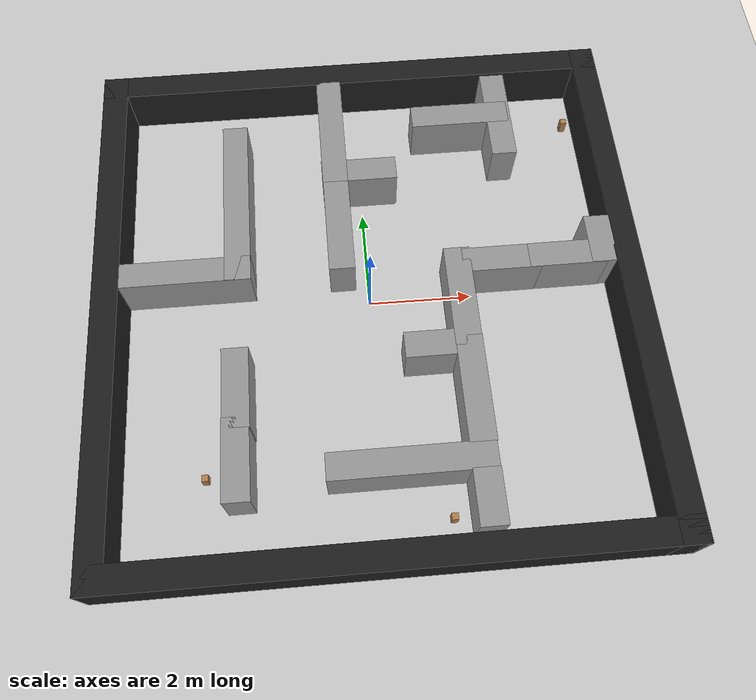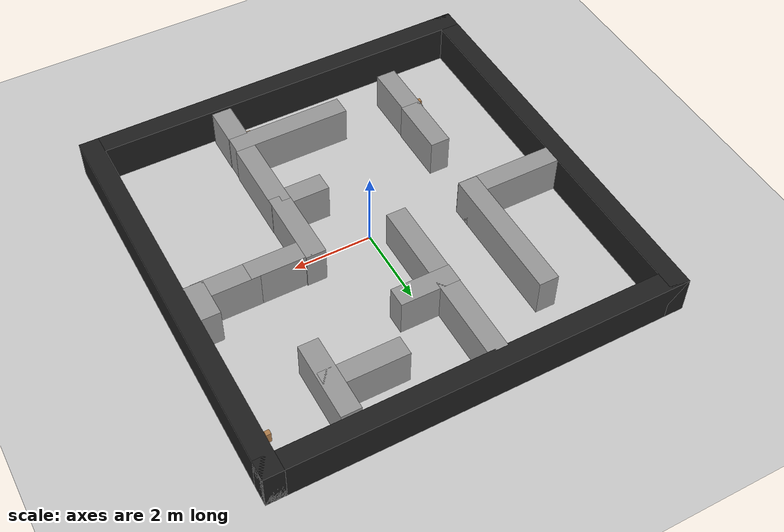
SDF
<sdf version="1.7">
 <world name="default">
  <light name="sun" type="directional">
   <pose>0 0 10 0 -0 0</pose>
   <diffuse>0.8 0.8 0.8 1</diffuse>
   <specular>0.2 0.2 0.2 1</specular>
   <attenuation>
    <range>1000</range>
    <constant>0.9</constant>
    <linear>0.01</linear>
    <quadratic>0.001</quadratic>
   </attenuation>
   <direction>-0.5 0.1 -0.9</direction>
   <spot><inner_angle>0</inner_angle><outer_angle>0</outer_angle><falloff>0</falloff></spot>
  </light>
  <model name="ground_plane">
   <static>1</static>
   <link name="link">
    <collision name="collision">
     <geometry><plane><normal>0 0 1</normal><size>100 100</size></plane></geometry>
     <surface><friction><ode><mu>100</mu><mu2>50</mu2></ode></friction></surface>
    </collision>
    <visual name="visual">
     <cast_shadows>0</cast_shadows>
     <geometry><plane><normal>0 0 1</normal><size>100 100</size></plane></geometry>
     <material>
      <script><uri>file://media/materials/scripts/gazebo.material</uri><name>Gazebo/Grey</name></script>
     </material>
    </visual>
   </link>
  </model>
  <gravity>0 0 -9.8</gravity>
  <magnetic_field>6e-06 2.3e-05 -4.2e-05</magnetic_field>
  <atmosphere type="adiabatic"/>
  <physics type="ode">
   <max_step_size>0.001</max_step_size>
   <real_time_factor>1</real_time_factor>
   <real_time_update_rate>1000</real_time_update_rate>
  </physics>
  <scene><ambient>0.4 0.4 0.4 1</ambient><background>0.7 0.7 0.7 1</background><shadows>1</shadows></scene>
  <audio><device>default</device></audio>
  <spherical_coordinates>
   <surface_model>EARTH_WGS84</surface_model>
   <latitude_deg>0</latitude_deg>
   <longitude_deg>0</longitude_deg>
   <elevation>0</elevation>
   <heading_deg>0</heading_deg>
  </spherical_coordinates>
  <model name="north_wall">
   <static>1</static>
   <pose>5 0 0.5 0 -0 0</pose>
   <link name="link">
    <inertial>
     <mass>1</mass>
     <inertia>
      <ixx>0.166667</ixx>
      <ixy>0</ixy>
      <ixz>0</ixz>
      <iyy>0.166667</iyy>
      <iyz>0</iyz>
      <izz>0.166667</izz>
     </inertia>
    </inertial>
    <collision name="collision"><geometry><box><size>0.5 10.5 1</size></box></geometry></collision>
    <visual name="visual">
     <geometry><box><size>0.5 10.5 1</size></box></geometry>
     <material>
      <script><name>Gazebo/Black</name><uri>file://media/materials/scripts/gazebo.material</uri></script>
     </material>
    </visual>
   </link>
  </model>
  <model name="south_wall">
   <static>1</static>
   <pose>-5 0 0.5 0 -0 0</pose>
   <link name="link">
    <inertial>
     <mass>1</mass>
     <inertia>
      <ixx>0.166667</ixx>
      <ixy>0</ixy>
      <ixz>0</ixz>
      <iyy>0.166667</iyy>
      <iyz>0</iyz>
      <izz>0.166667</izz>
     </inertia>
    </inertial>
    <collision name="collision"><geometry><box><size>0.5 10.5 1</size></box></geometry></collision>
    <visual name="visual">
     <geometry><box><size>0.5 10.5 1</size></box></geometry>
     <material>
      <script><name>Gazebo/Black</name><uri>file://media/materials/scripts/gazebo.material</uri></script>
     </material>
    </visual>
   </link>
  </model>
  <model name="east_wall">
   <static>1</static>
   <pose>0 -5 0.5 0 -0 0</pose>
   <link name="link">
    <inertial>
     <mass>1</mass>
     <inertia>
      <ixx>0.166667</ixx>
      <ixy>0</ixy>
      <ixz>0</ixz>
      <iyy>0.166667</iyy>
      <iyz>0</iyz>
      <izz>0.166667</izz>
     </inertia>
    </inertial>
    <collision name="collision"><geometry><box><size>10.5 0.5 1</size></box></geometry></collision>
    <visual name="visual">
     <geometry><box><size>10.5 0.5 1</size></box></geometry>
     <material>
      <script><name>Gazebo/Black</name><uri>file://media/materials/scripts/gazebo.material</uri></script>
     </material>
    </visual>
   </link>
  </model>
  <model name="west_wall">
   <static>1</static>
   <pose>0 5 0.5 0 -0 0</pose>
   <link name="link">
    <inertial>
     <mass>1</mass>
     <inertia>
      <ixx>0.166667</ixx>
      <ixy>0</ixy>
      <ixz>0</ixz>
      <iyy>0.166667</iyy>
      <iyz>0</iyz>
      <izz>0.166667</izz>
     </inertia>
    </inertial>
    <collision name="collision"><geometry><box><size>10.5 0.5 1</size></box></geometry></collision>
    <visual name="visual">
     <geometry><box><size>10.5 0.5 1</size></box></geometry>
     <material>
      <script><name>Gazebo/Black</name><uri>file://media/materials/scripts/gazebo.material</uri></script>
     </material>
    </visual>
   </link>
  </model>
  <model name="h1">
   <static>1</static>
   <pose>4.52784 0.58406 0.5 0 -0 0</pose>
   <link name="link">
    <inertial>
     <mass>1</mass>
     <inertia>
      <ixx>0.166667</ixx>
      <ixy>0</ixy>
      <ixz>0</ixz>
      <iyy>0.166667</iyy>
      <iyz>0</iyz>
      <izz>0.166667</izz>
     </inertia>
    </inertial>
    <collision name="collision"><geometry><box><size>0.5 1 1</size></box></geometry></collision>
    <visual name="visual">
     <geometry><box><size>0.5 1 1</size></box></geometry>
     <material>
      <script><name>Gazebo/Grey</name><uri>file://media/materials/scripts/gazebo.material</uri></script>
     </material>
    </visual>
   </link>
  </model>
  <model name="h2">
   <static>1</static>
   <pose>1.70441 -4.17674 0.5 0 -0 0</pose>
   <link name="link">
    <inertial>
     <mass>1</mass>
     <inertia>
      <ixx>0.166667</ixx>
      <ixy>0</ixy>
      <ixz>0</ixz>
      <iyy>0.166667</iyy>
      <iyz>0</iyz>
      <izz>0.166667</izz>
     </inertia>
    </inertial>
    <collision name="collision"><geometry><box><size>0.5 1 1</size></box></geometry></collision>
    <visual name="visual">
     <geometry><box><size>0.5 1 1</size></box></geometry>
     <material>
      <script><name>Gazebo/Grey</name><uri>file://media/materials/scripts/gazebo.material</uri></script>
     </material>
    </visual>
   </link>
  </model>
  <model name="h3">
   <static>1</static>
   <pose>-0.508476 1.32572 0.5 0 -0 0</pose>
   <link name="link">
    <inertial>
     <mass>1</mass>
     <inertia>
      <ixx>0.166667</ixx>
      <ixy>0</ixy>
      <ixz>0</ixz>
      <iyy>0.166667</iyy>
      <iyz>0</iyz>
      <izz>0.166667</izz>
     </inertia>
    </inertial>
    <collision name="collision"><geometry><box><size>0.5 2 1</size></box></geometry></collision>
    <visual name="visual">
     <geometry><box><size>0.5 2 1</size></box></geometry>
     <material>
      <script><name>Gazebo/Grey</name><uri>file://media/materials/scripts/gazebo.material</uri></script>
     </material>
    </visual>
   </link>
  </model>
  <model name="h5">
   <static>1</static>
   <pose>1.7077 -0.403069 0.5 0 -0 0</pose>
   <link name="link">
    <inertial>
     <mass>1</mass>
     <inertia>
      <ixx>0.166667</ixx>
      <ixy>0</ixy>
      <ixz>0</ixz>
      <iyy>0.166667</iyy>
      <iyz>0</iyz>
      <izz>0.166667</izz>
     </inertia>
    </inertial>
    <collision name="collision"><geometry><box><size>0.5 2 1</size></box></geometry></collision>
    <visual name="visual">
     <geometry><box><size>0.5 2 1</size></box></geometry>
     <material>
      <script><name>Gazebo/Grey</name><uri>file://media/materials/scripts/gazebo.material</uri></script>
     </material>
    </visual>
   </link>
  </model>
  <model name="h6">
   <static>1</static>
   <pose>-2.57589 -1.88629 0.5 0 -0 0</pose>
   <link name="link">
    <inertial>
     <mass>1</mass>
     <inertia>
      <ixx>0.166667</ixx>
      <ixy>0</ixy>
      <ixz>0</ixz>
      <iyy>0.166667</iyy>
      <iyz>0</iyz>
      <izz>0.166667</izz>
     </inertia>
    </inertial>
    <collision name="collision"><geometry><box><size>0.5 1.5 1</size></box></geometry></collision>
    <visual name="visual">
     <geometry><box><size>0.5 1.5 1</size></box></geometry>
     <material>
      <script><name>Gazebo/Grey</name><uri>file://media/materials/scripts/gazebo.material</uri></script>
     </material>
    </visual>
   </link>
  </model>
  <model name="h7">
   <static>1</static>
   <pose>-2.59092 -3.19048 0.5 0 -0 0</pose>
   <link name="link">
    <inertial>
     <mass>1</mass>
     <inertia>
      <ixx>0.166667</ixx>
      <ixy>0</ixy>
      <ixz>0</ixz>
      <iyy>0.166667</iyy>
      <iyz>0</iyz>
      <izz>0.166667</izz>
     </inertia>
    </inertial>
    <collision name="collision"><geometry><box><size>0.5 1.5 1</size></box></geometry></collision>
    <visual name="visual">
     <geometry><box><size>0.5 1.5 1</size></box></geometry>
     <material>
      <script><name>Gazebo/Grey</name><uri>file://media/materials/scripts/gazebo.material</uri></script>
     </material>
    </visual>
   </link>
  </model>
  <model name="h8">
   <static>1</static>
   <pose>1.71373 -2.22723 0.5 0 -0 0</pose>
   <link name="link">
    <inertial>
     <mass>1</mass>
     <inertia>
      <ixx>0.166667</ixx>
      <ixy>0</ixy>
      <ixz>0</ixz>
      <iyy>0.166667</iyy>
      <iyz>0</iyz>
      <izz>0.166667</izz>
     </inertia>
    </inertial>
    <collision name="collision"><geometry><box><size>0.5 2 1</size></box></geometry></collision>
    <visual name="visual">
     <geometry><box><size>0.5 2 1</size></box></geometry>
     <material>
      <script><name>Gazebo/Grey</name><uri>file://media/materials/scripts/gazebo.material</uri></script>
     </material>
    </visual>
   </link>
  </model>
  <model name="h9">
   <static>1</static>
   <pose>-0.51307 3.54164 0.5 0 -0 0</pose>
   <link name="link">
    <inertial>
     <mass>1</mass>
     <inertia>
      <ixx>0.166667</ixx>
      <ixy>0</ixy>
      <ixz>0</ixz>
      <iyy>0.166667</iyy>
      <iyz>0</iyz>
      <izz>0.166667</izz>
     </inertia>
    </inertial>
    <collision name="collision"><geometry><box><size>0.5 2.5 1</size></box></geometry></collision>
    <visual name="visual">
     <geometry><box><size>0.5 2.5 1</size></box></geometry>
     <material>
      <script><name>Gazebo/Grey</name><uri>file://media/materials/scripts/gazebo.material</uri></script>
     </material>
    </visual>
   </link>
  </model>
  <model name="h10">
   <static>1</static>
   <pose>-2.5 2.00746 0.5 0 -0 0</pose>
   <link name="link">
    <inertial>
     <mass>1</mass>
     <inertia>
      <ixx>0.166667</ixx>
      <ixy>0</ixy>
      <ixz>0</ixz>
      <iyy>0.166667</iyy>
      <iyz>0</iyz>
      <izz>0.166667</izz>
     </inertia>
    </inertial>
    <collision name="collision"><geometry><box><size>0.5 3.5 1</size></box></geometry></collision>
    <visual name="visual">
     <geometry><box><size>0.5 3.5 1</size></box></geometry>
     <material>
      <script><name>Gazebo/Grey</name><uri>file://media/materials/scripts/gazebo.material</uri></script>
     </material>
    </visual>
   </link>
  </model>
  <model name="h11">
   <static>1</static>
   <pose>2.97094 3.69572 0.5 0 -0 0</pose>
   <link name="link">
    <inertial>
     <mass>1</mass>
     <inertia>
      <ixx>0.166667</ixx>
      <ixy>0</ixy>
      <ixz>0</ixz>
      <iyy>0.166667</iyy>
      <iyz>0</iyz>
      <izz>0.166667</izz>
     </inertia>
    </inertial>
    <collision name="collision"><geometry><box><size>0.5 2 1</size></box></geometry></collision>
    <visual name="visual">
     <geometry><box><size>0.5 2 1</size></box></geometry>
     <material>
      <script><name>Gazebo/Grey</name><uri>file://media/materials/scripts/gazebo.material</uri></script>
     </material>
    </visual>
   </link>
  </model>
  <model name="v12">
   <static>1</static>
   <pose>2.55226 0.319037 0.5 0 -0 0</pose>
   <link name="link">
    <inertial>
     <mass>1</mass>
     <inertia>
      <ixx>0.166667</ixx>
      <ixy>0</ixy>
      <ixz>0</ixz>
      <iyy>0.166667</iyy>
      <iyz>0</iyz>
      <izz>0.166667</izz>
     </inertia>
    </inertial>
    <collision name="collision"><geometry><box><size>1.5 0.5 1</size></box></geometry></collision>
    <visual name="visual">
     <geometry><box><size>1.5 0.5 1</size></box></geometry>
     <material>
      <script><name>Gazebo/Grey</name><uri>file://media/materials/scripts/gazebo.material</uri></script>
     </material>
    </visual>
   </link>
  </model>
  <model name="v13">
   <static>1</static>
   <pose>-0.02241 2.5381 0.5 0 -0 0</pose>
   <link name="link">
    <inertial>
     <mass>1</mass>
     <inertia>
      <ixx>0.166667</ixx>
      <ixy>0</ixy>
      <ixz>0</ixz>
      <iyy>0.166667</iyy>
      <iyz>0</iyz>
      <izz>0.166667</izz>
     </inertia>
    </inertial>
    <collision name="collision"><geometry><box><size>1.5 0.5 1</size></box></geometry></collision>
    <visual name="visual">
     <geometry><box><size>1.5 0.5 1</size></box></geometry>
     <material>
      <script><name>Gazebo/Grey</name><uri>file://media/materials/scripts/gazebo.material</uri></script>
     </material>
    </visual>
   </link>
  </model>
  <model name="v15">
   <static>1</static>
   <pose>2.16856 3.74577 0.5 0 -0 0</pose>
   <link name="link">
    <inertial>
     <mass>1</mass>
     <inertia>
      <ixx>0.166667</ixx>
      <ixy>0</ixy>
      <ixz>0</ixz>
      <iyy>0.166667</iyy>
      <iyz>0</iyz>
      <izz>0.166667</izz>
     </inertia>
    </inertial>
    <collision name="collision"><geometry><box><size>2 0.5 1</size></box></geometry></collision>
    <visual name="visual">
     <geometry><box><size>2 0.5 1</size></box></geometry>
     <material>
      <script><name>Gazebo/Grey</name><uri>file://media/materials/scripts/gazebo.material</uri></script>
     </material>
    </visual>
   </link>
  </model>
  <model name="v16">
   <static>1</static>
   <pose>0.444503 -3.4583 0.5 0 -0 0</pose>
   <link name="link">
    <inertial>
     <mass>1</mass>
     <inertia>
      <ixx>0.166667</ixx>
      <ixy>0</ixy>
      <ixz>0</ixz>
      <iyy>0.166667</iyy>
      <iyz>0</iyz>
      <izz>0.166667</izz>
     </inertia>
    </inertial>
    <collision name="collision"><geometry><box><size>3 0.5 1</size></box></geometry></collision>
    <visual name="visual">
     <geometry><box><size>3 0.5 1</size></box></geometry>
     <material>
      <script><name>Gazebo/Grey</name><uri>file://media/materials/scripts/gazebo.material</uri></script>
     </material>
    </visual>
   </link>
  </model>
  <model name="v18">
   <static>1</static>
   <pose>-3.5 0.5 0.5 0 -0 0</pose>
   <link name="link">
    <inertial>
     <mass>1</mass>
     <inertia>
      <ixx>0.166667</ixx>
      <ixy>0</ixy>
      <ixz>0</ixz>
      <iyy>0.166667</iyy>
      <iyz>0</iyz>
      <izz>0.166667</izz>
     </inertia>
    </inertial>
    <collision name="collision"><geometry><box><size>2.5 0.5 1</size></box></geometry></collision>
    <visual name="visual">
     <geometry><box><size>2.5 0.5 1</size></box></geometry>
     <material>
      <script><name>Gazebo/Grey</name><uri>file://media/materials/scripts/gazebo.material</uri></script>
     </material>
    </visual>
   </link>
  </model>
  <model name="v19">
   <static>1</static>
   <pose>3.83336 0.322056 0.5 0 -0 0</pose>
   <link name="link">
    <inertial>
     <mass>1</mass>
     <inertia>
      <ixx>0.166667</ixx>
      <ixy>0</ixy>
      <ixz>0</ixz>
      <iyy>0.166667</iyy>
      <iyz>0</iyz>
      <izz>0.166667</izz>
     </inertia>
    </inertial>
    <collision name="collision"><geometry><box><size>1.5 0.5 1</size></box></geometry></collision>
    <visual name="visual">
     <geometry><box><size>1.5 0.5 1</size></box></geometry>
     <material>
      <script><name>Gazebo/Grey</name><uri>file://media/materials/scripts/gazebo.material</uri></script>
     </material>
    </visual>
   </link>
  </model>
  <model name="v20">
   <static>1</static>
   <pose>1.0212 -1.33132 0.5 0 -0 0</pose>
   <link name="link">
    <inertial>
     <mass>1</mass>
     <inertia>
      <ixx>0.166667</ixx>
      <ixy>0</ixy>
      <ixz>0</ixz>
      <iyy>0.166667</iyy>
      <iyz>0</iyz>
      <izz>0.166667</izz>
     </inertia>
    </inertial>
    <collision name="collision"><geometry><box><size>1 0.5 1</size></box></geometry></collision>
    <visual name="visual">
     <geometry><box><size>1 0.5 1</size></box></geometry>
     <material>
      <script><name>Gazebo/Grey</name><uri>file://media/materials/scripts/gazebo.material</uri></script>
     </material>
    </visual>
   </link>
  </model>
  <model name="aruco_column_6x6_100mm_42">
   <link name="link">
    <pose>0 0 0.15 0 -0 0</pose>
    <inertial>
     <mass>1</mass>
     <inertia><ixx>1</ixx><ixy>0</ixy><ixz>0</ixz><iyy>1</iyy><iyz>0</iyz><izz>1</izz></inertia>
    </inertial>
    <collision name="collision">
     <geometry><box><size>0.12 0.12 0.3</size></box></geometry>
     <surface>
      <contact>
       <poissons_ratio>0.347</poissons_ratio>
       <elastic_modulus>8.8e+09</elastic_modulus>
       <ode><kp>100000</kp><kd>1</kd><max_vel>1</max_vel><min_depth>0.001</min_depth></ode>
      </contact>
      <friction>
       <torsional>
        <coefficient>1</coefficient>
        <use_patch_radius>0</use_patch_radius>
        <surface_radius>0.05</surface_radius>
       </torsional>
      </friction>
     </surface>
    </collision>
    <visual name="visual">
     <geometry><box><size>0.12 0.12 0.3</size></box></geometry>
     <material>
      <script><uri>file://media/materials/scripts/gazebo.material</uri><name>Gazebo/Wood</name></script>
     </material>
    </visual>
   </link>
   <link name="aruco_6x6_100mm_42::main">
    <pose relative_to="aruco_6x6_100mm_42::__model__">0 0 0 0 -0 0</pose>
    <visual name="main_Visual">
     <geometry><box><size>0.1 0.1 0.001</size></box></geometry>
     <material>
      <script>
       <uri>file://media/materials/scripts</uri>
       <uri>file://media/materials/textures</uri>
       <name>aruco_6x6_100mm_42</name>
      </script>
     </material>
    </visual>
    <inertial>
     <inertia><ixx>1</ixx><ixy>0</ixy><ixz>0</ixz><iyy>1</iyy><iyz>0</iyz><izz>1</izz></inertia>
     <mass>1</mass>
    </inertial>
   </link>
   <frame name="aruco_6x6_100mm_42::__model__" attached_to="aruco_6x6_100mm_42::main">
    <pose relative_to="__model__">-0.06 0 0.24 3.14159 1.57079 3.14159</pose>
   </frame>
   <joint name="aruco_6x6_100mm_42_joint" type="fixed">
    <child>aruco_6x6_100mm_42::main</child>
    <parent>link</parent>
   </joint>
   <pose>-3.23191 -3.30652 -0.001049 0 -0.000405 0</pose>
  </model>
  <model name="aruco_column_6x6_100mm_2">
   <link name="link">
    <pose>0 0 0.15 0 -0 0</pose>
    <inertial>
     <mass>1</mass>
     <inertia><ixx>1</ixx><ixy>0</ixy><ixz>0</ixz><iyy>1</iyy><iyz>0</iyz><izz>1</izz></inertia>
    </inertial>
    <collision name="collision">
     <geometry><box><size>0.12 0.12 0.3</size></box></geometry>
     <surface>
      <contact>
       <poissons_ratio>0.347</poissons_ratio>
       <elastic_modulus>8.8e+09</elastic_modulus>
       <ode><kp>100000</kp><kd>1</kd><max_vel>1</max_vel><min_depth>0.001</min_depth></ode>
      </contact>
      <friction>
       <torsional>
        <coefficient>1</coefficient>
        <use_patch_radius>0</use_patch_radius>
        <surface_radius>0.05</surface_radius>
       </torsional>
      </friction>
     </surface>
    </collision>
    <visual name="visual">
     <geometry><box><size>0.12 0.12 0.3</size></box></geometry>
     <material>
      <script><uri>file://media/materials/scripts/gazebo.material</uri><name>Gazebo/Wood</name></script>
     </material>
    </visual>
   </link>
   <link name="aruco_6x6_100mm_2::main">
    <pose relative_to="aruco_6x6_100mm_2::__model__">0 0 0 0 -0 0</pose>
    <visual name="main_Visual">
     <geometry><box><size>0.1 0.1 0.001</size></box></geometry>
     <material>
      <script>
       <uri>file://media/materials/scripts</uri>
       <uri>file://media/materials/textures</uri>
       <name>aruco_6x6_100mm_2</name>
      </script>
     </material>
    </visual>
    <inertial>
     <inertia><ixx>1</ixx><ixy>0</ixy><ixz>0</ixz><iyy>1</iyy><iyz>0</iyz><izz>1</izz></inertia>
     <mass>1</mass>
    </inertial>
   </link>
   <frame name="aruco_6x6_100mm_2::__model__" attached_to="aruco_6x6_100mm_2::main">
    <pose relative_to="__model__">-0.06 0 0.14 3.14159 1.57079 3.14159</pose>
   </frame>
   <joint name="aruco_6x6_100mm_2_joint" type="fixed">
    <child>aruco_6x6_100mm_2::main</child>
    <parent>link</parent>
   </joint>
   <pose>4.53848 3.8944 -0.001049 0 -0.000405 0</pose>
  </model>
  <model name="aruco_column_6x6_100mm_0">
   <link name="link">
    <pose>0 0 0.15 0 -0 0</pose>
    <inertial>
     <mass>1</mass>
     <inertia><ixx>1</ixx><ixy>0</ixy><ixz>0</ixz><iyy>1</iyy><iyz>0</iyz><izz>1</izz></inertia>
    </inertial>
    <collision name="collision">
     <geometry><box><size>0.12 0.12 0.3</size></box></geometry>
     <surface>
      <contact>
       <poissons_ratio>0.347</poissons_ratio>
       <elastic_modulus>8.8e+09</elastic_modulus>
       <ode><kp>100000</kp><kd>1</kd><max_vel>1</max_vel><min_depth>0.001</min_depth></ode>
      </contact>
      <friction>
       <torsional>
        <coefficient>1</coefficient>
        <use_patch_radius>0</use_patch_radius>
        <surface_radius>0.05</surface_radius>
       </torsional>
      </friction>
     </surface>
    </collision>
    <visual name="visual">
     <geometry><box><size>0.12 0.12 0.3</size></box></geometry>
     <material>
      <script><uri>file://media/materials/scripts/gazebo.material</uri><name>Gazebo/Wood</name></script>
     </material>
    </visual>
   </link>
   <link name="aruco_6x6_100mm_0::main">
    <pose relative_to="aruco_6x6_100mm_0::__model__">0 0 0 0 -0 0</pose>
    <visual name="main_Visual">
     <geometry><box><size>0.1 0.1 0.001</size></box></geometry>
     <material>
      <script>
       <uri>file://media/materials/scripts</uri>
       <uri>file://media/materials/textures</uri>
       <name>aruco_6x6_100mm_0</name>
      </script>
     </material>
    </visual>
    <inertial>
     <inertia><ixx>1</ixx><ixy>0</ixy><ixz>0</ixz><iyy>1</iyy><iyz>0</iyz><izz>1</izz></inertia>
     <mass>1</mass>
    </inertial>
   </link>
   <frame name="aruco_6x6_100mm_0::__model__" attached_to="aruco_6x6_100mm_0::main">
    <pose relative_to="__model__">-0.06 0 0.19 3.14159 1.57079 3.14159</pose>
   </frame>
   <joint name="aruco_6x6_100mm_0_joint" type="fixed">
    <child>aruco_6x6_100mm_0::main</child>
    <parent>link</parent>
   </joint>
   <pose>1.14214 -4.33301 -0.001049 -0 -0.000405 -1.57</pose>
  </model>
 </world>
</sdf>
